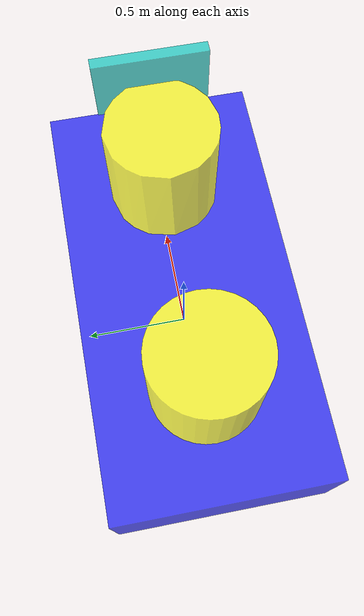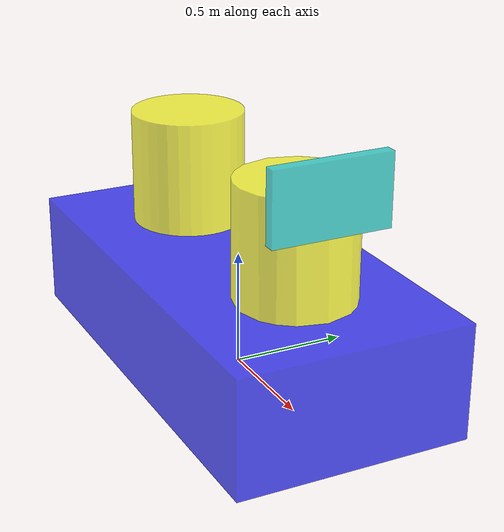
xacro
<?xml version="1.0"?>

<robot xmlns:xacro="http://ros.org/xacro" name="my_robot">
  <!-- Properties -->
  <xacro:property name="blue" value="0 0 1 0.7" />
  <xacro:property name="yellow" value="1 1 0 0.7" />
  <xacro:property name="head_material" value="0 0.800007 0.767275 0.7" />
  <xacro:property name="yellow_001" value="1 1 0 0.7" />
  <!-- Materials -->
  <material name="blue">
    <color rgba="${blue}" />
  </material>
  <material name="yellow">
    <color rgba="${yellow}" />
  </material>
  <material name="head_material">
    <color rgba="${head_material}" />
  </material>
  <material name="yellow_001">
    <color rgba="${yellow_001}" />
  </material>
  <!-- Links -->
  <link name="base_link">
    <inertial>
      <mass value="1" />
      <inertia ixx="0" ixy="0" ixz="0" iyy="0" iyz="0" izz="0" />
    </inertial>
  </link>
  <link name="head_link">
    <inertial>
      <origin xyz="0 0 0" rpy="1.570796 0 1.570796" />
      <mass value="0.1" />
      <inertia ixx="0.000771" ixy="0" ixz="0" iyy="0.002104" iyz="0" izz="0.002833" />
    </inertial>
    <visual>
      <origin xyz="0 0 0" rpy="1.570796 0 1.570796" />
      <geometry>
        <box size="0.5 0.3 0.05" />
      </geometry>
      <material name="head_material" />
    </visual>
    <collision>
      <origin xyz="0 0 0" rpy="1.570796 0 1.570796" />
      <geometry>
        <box size="0.5 0.3 0.05" />
      </geometry>
    </collision>
  </link>
  <link name="main_body_link">
    <inertial>
      <mass value="1" />
      <inertia ixx="0.104167" ixy="0" ixz="0" iyy="0.354167" iyz="0" izz="0.416667" />
    </inertial>
    <visual>
      <geometry>
        <box size="2 1 0.5" />
      </geometry>
      <material name="blue" />
    </visual>
    <collision>
      <geometry>
        <box size="2 1 0.5" />
      </geometry>
    </collision>
  </link>
  <link name="neck_2_link">
    <inertial>
      <origin xyz="0 0 0.25" rpy="0 0 0" />
      <mass value="0.5" />
      <inertia ixx="0.083333" ixy="0" ixz="0" iyy="0.083333" iyz="0" izz="0.083333" />
    </inertial>
    <visual>
      <origin xyz="0 0 0.25" rpy="0 0 0" />
      <geometry>
        <mesh filename="file://$(find blender_test_core)/meshes/neck_2_link_visual.stl" />
      </geometry>
      <material name="yellow_001" />
    </visual>
    <collision>
      <origin xyz="0 0 0.25" rpy="0 0 0" />
      <geometry>
        <mesh filename="file://$(find blender_test_core)/meshes/neck_2_link_collision.stl" />
      </geometry>
    </collision>
  </link>
  <link name="neck_link">
    <inertial>
      <origin xyz="0 0 0.25" rpy="0 0 0" />
      <mass value="0.5" />
      <inertia ixx="0.083333" ixy="0" ixz="0" iyy="0.083333" iyz="0" izz="0.083333" />
    </inertial>
    <visual>
      <origin xyz="0 0 0.25" rpy="0 0 0" />
      <geometry>
        <mesh filename="file://$(find blender_test_core)/meshes/neck_link_visual.stl" />
      </geometry>
      <material name="yellow" />
    </visual>
    <collision>
      <origin xyz="0 0 0.25" rpy="0 0 0" />
      <geometry>
        <mesh filename="file://$(find blender_test_core)/meshes/neck_link_collision.stl" />
      </geometry>
    </collision>
  </link>
  <!-- Joints -->
  <joint name="base_link_joint" type="fixed">
    <origin xyz="0 0 0.25" rpy="0 0 0" />
    <parent link="base_link" />
    <child link="main_body_link" />
  </joint>
  <joint name="main_body_neck_2_joint" type="revolute">
    <origin xyz="-0.5 0 0.25" rpy="0 0 0" />
    <parent link="main_body_link" />
    <child link="neck_2_link" />
    <axis xyz="0 0 1" />
    <limit effort="10" velocity="1" lower="-3.141593" upper="3.141593" />
  </joint>
  <joint name="main_body_neck_joint" type="revolute">
    <origin xyz="0.5 0 0.25" rpy="0 0 0" />
    <parent link="main_body_link" />
    <child link="neck_link" />
    <axis xyz="0 0 1" />
    <limit effort="10" velocity="1" lower="-3.141593" upper="3.141593" />
  </joint>
  <joint name="neck_head_joint" type="fixed">
    <origin xyz="0.25 0 0.5" rpy="0 0 0" />
    <parent link="neck_link" />
    <child link="head_link" />
  </joint>
  <!-- ROS 2 Control -->
  <ros2_control name="GazeboSimSystem" type="system">
    <hardware>
      <plugin>gz_ros2_control/GazeboSimSystem</plugin>
    </hardware>
    <joint name="main_body_neck_2_joint">
      <command_interface name="position" />
      <state_interface name="position" />
    </joint>
    <joint name="main_body_neck_joint">
      <command_interface name="position" />
      <state_interface name="position" />
    </joint>
  </ros2_control>
  <!-- Gazebo Extensions -->
  <gazebo>
    <plugin name="gz_ros2_control::GazeboSimROS2ControlPlugin" filename="gz_ros2_control-system">
      <parameters>$(find blender_test_core)/config/my_robot_controllers.yaml</parameters>
    </plugin>
  </gazebo>
</robot>
